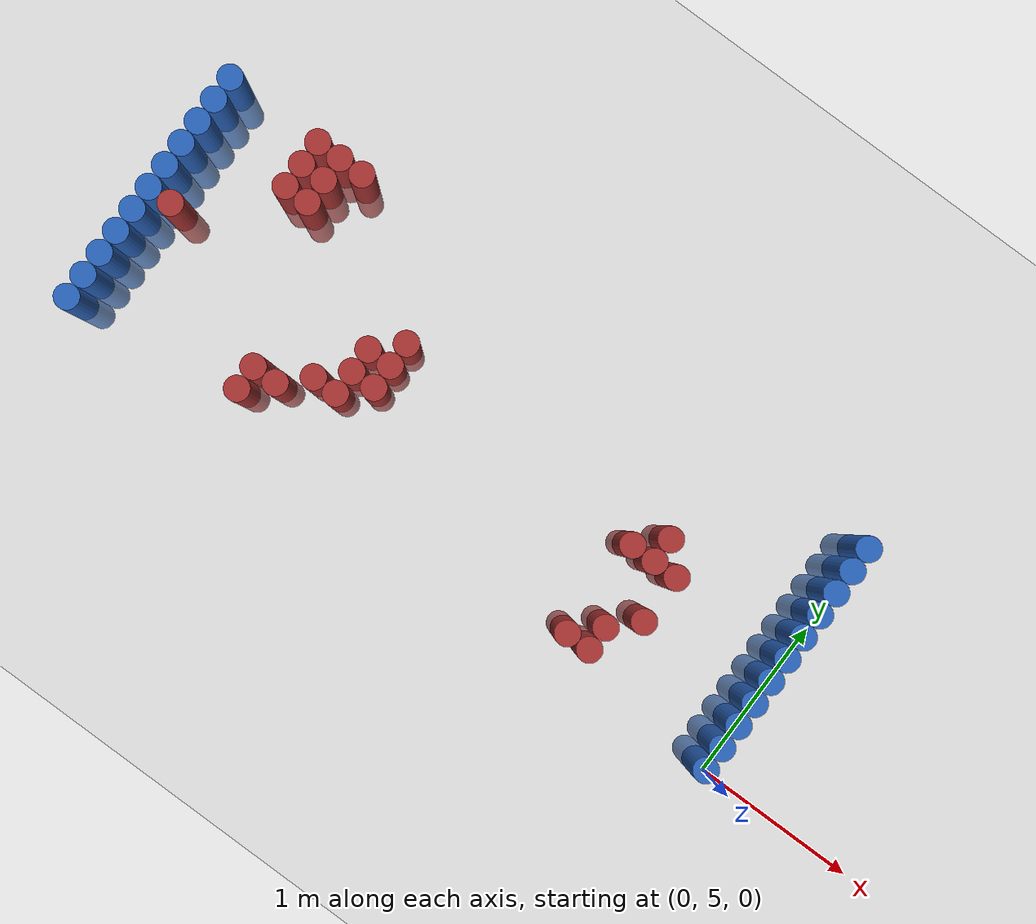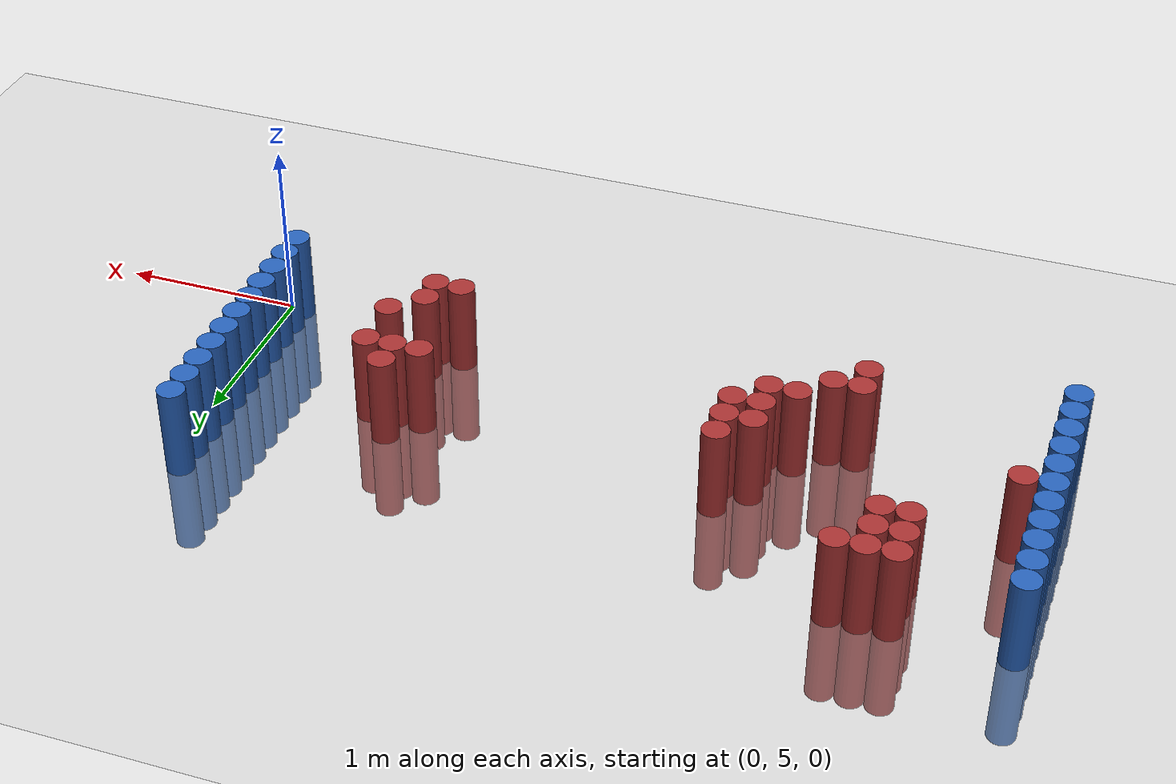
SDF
<sdf version="1.6">
 <world name="default">
  <model name="ground_plane">
   <static>1</static>
   <link name="link">
    <collision name="collision">
     <geometry><plane><normal>0 0 1</normal><size>100 100</size></plane></geometry>
     <surface><friction><ode><mu>100</mu><mu2>50</mu2></ode></friction></surface>
    </collision>
    <visual name="visual">
     <cast_shadows>0</cast_shadows>
     <geometry><plane><normal>0 0 1</normal><size>100 100</size></plane></geometry>
     <material>
      <script><uri>file://media/materials/scripts/gazebo.material</uri><name>Gazebo/Grey</name></script>
     </material>
    </visual>
   </link>
  </model>
  <model name="unit_cylinder_94">
   <static>1</static>
   <pose>-0.075000 5.025000 0.000000 0.000000 0.000000 0.000000</pose>
   <link name="link">
    <inertial>
     <mass>1</mass>
     <inertia><ixx>0.145833</ixx><ixy>0</ixy><ixz>0</ixz><iyy>0.145833</iyy><iyz>0</iyz><izz>0.125</izz></inertia>
    </inertial>
    <collision name="collision">
     <geometry><cylinder><radius>0.075000</radius><length>1</length></cylinder></geometry>
    </collision>
    <visual name="visual">
     <geometry><cylinder><radius>0.075000</radius><length>1</length></cylinder></geometry>
     <material>
      <ambient>0.152000 0.379000 0.720000 1</ambient>
      <diffuse>0.152000 0.379000 0.720000 1</diffuse>
     </material>
     <material>
      <script><name>Gazebo/Grey</name><uri>file://media/materials/scripts/gazebo.material</uri></script>
     </material>
    </visual>
   </link>
  </model>
  <model name="unit_cylinder_95">
   <static>1</static>
   <pose>-4.425000 5.025000 0.000000 0.000000 0.000000 0.000000</pose>
   <link name="link">
    <inertial>
     <mass>1</mass>
     <inertia><ixx>0.145833</ixx><ixy>0</ixy><ixz>0</ixz><iyy>0.145833</iyy><iyz>0</iyz><izz>0.125</izz></inertia>
    </inertial>
    <collision name="collision">
     <geometry><cylinder><radius>0.075000</radius><length>1</length></cylinder></geometry>
    </collision>
    <visual name="visual">
     <geometry><cylinder><radius>0.075000</radius><length>1</length></cylinder></geometry>
     <material>
      <ambient>0.152000 0.379000 0.720000 1</ambient>
      <diffuse>0.152000 0.379000 0.720000 1</diffuse>
     </material>
     <material>
      <script><name>Gazebo/Grey</name><uri>file://media/materials/scripts/gazebo.material</uri></script>
     </material>
    </visual>
   </link>
  </model>
  <model name="unit_cylinder_96">
   <static>1</static>
   <pose>-4.425000 5.175000 0.000000 0.000000 0.000000 0.000000</pose>
   <link name="link">
    <inertial>
     <mass>1</mass>
     <inertia><ixx>0.145833</ixx><ixy>0</ixy><ixz>0</ixz><iyy>0.145833</iyy><iyz>0</iyz><izz>0.125</izz></inertia>
    </inertial>
    <collision name="collision">
     <geometry><cylinder><radius>0.075000</radius><length>1</length></cylinder></geometry>
    </collision>
    <visual name="visual">
     <geometry><cylinder><radius>0.075000</radius><length>1</length></cylinder></geometry>
     <material>
      <ambient>0.152000 0.379000 0.720000 1</ambient>
      <diffuse>0.152000 0.379000 0.720000 1</diffuse>
     </material>
     <material>
      <script><name>Gazebo/Grey</name><uri>file://media/materials/scripts/gazebo.material</uri></script>
     </material>
    </visual>
   </link>
  </model>
  <model name="unit_cylinder_97">
   <static>1</static>
   <pose>-4.425000 5.325000 0.000000 0.000000 0.000000 0.000000</pose>
   <link name="link">
    <inertial>
     <mass>1</mass>
     <inertia><ixx>0.145833</ixx><ixy>0</ixy><ixz>0</ixz><iyy>0.145833</iyy><iyz>0</iyz><izz>0.125</izz></inertia>
    </inertial>
    <collision name="collision">
     <geometry><cylinder><radius>0.075000</radius><length>1</length></cylinder></geometry>
    </collision>
    <visual name="visual">
     <geometry><cylinder><radius>0.075000</radius><length>1</length></cylinder></geometry>
     <material>
      <ambient>0.152000 0.379000 0.720000 1</ambient>
      <diffuse>0.152000 0.379000 0.720000 1</diffuse>
     </material>
     <material>
      <script><name>Gazebo/Grey</name><uri>file://media/materials/scripts/gazebo.material</uri></script>
     </material>
    </visual>
   </link>
  </model>
  <model name="unit_cylinder_98">
   <static>1</static>
   <pose>-4.425000 5.475000 0.000000 0.000000 0.000000 0.000000</pose>
   <link name="link">
    <inertial>
     <mass>1</mass>
     <inertia><ixx>0.145833</ixx><ixy>0</ixy><ixz>0</ixz><iyy>0.145833</iyy><iyz>0</iyz><izz>0.125</izz></inertia>
    </inertial>
    <collision name="collision">
     <geometry><cylinder><radius>0.075000</radius><length>1</length></cylinder></geometry>
    </collision>
    <visual name="visual">
     <geometry><cylinder><radius>0.075000</radius><length>1</length></cylinder></geometry>
     <material>
      <ambient>0.152000 0.379000 0.720000 1</ambient>
      <diffuse>0.152000 0.379000 0.720000 1</diffuse>
     </material>
     <material>
      <script><name>Gazebo/Grey</name><uri>file://media/materials/scripts/gazebo.material</uri></script>
     </material>
    </visual>
   </link>
  </model>
  <model name="unit_cylinder_99">
   <static>1</static>
   <pose>-4.425000 5.625000 0.000000 0.000000 0.000000 0.000000</pose>
   <link name="link">
    <inertial>
     <mass>1</mass>
     <inertia><ixx>0.145833</ixx><ixy>0</ixy><ixz>0</ixz><iyy>0.145833</iyy><iyz>0</iyz><izz>0.125</izz></inertia>
    </inertial>
    <collision name="collision">
     <geometry><cylinder><radius>0.075000</radius><length>1</length></cylinder></geometry>
    </collision>
    <visual name="visual">
     <geometry><cylinder><radius>0.075000</radius><length>1</length></cylinder></geometry>
     <material>
      <ambient>0.152000 0.379000 0.720000 1</ambient>
      <diffuse>0.152000 0.379000 0.720000 1</diffuse>
     </material>
     <material>
      <script><name>Gazebo/Grey</name><uri>file://media/materials/scripts/gazebo.material</uri></script>
     </material>
    </visual>
   </link>
  </model>
  <model name="unit_cylinder_100">
   <static>1</static>
   <pose>-4.425000 5.775000 0.000000 0.000000 0.000000 0.000000</pose>
   <link name="link">
    <inertial>
     <mass>1</mass>
     <inertia><ixx>0.145833</ixx><ixy>0</ixy><ixz>0</ixz><iyy>0.145833</iyy><iyz>0</iyz><izz>0.125</izz></inertia>
    </inertial>
    <collision name="collision">
     <geometry><cylinder><radius>0.075000</radius><length>1</length></cylinder></geometry>
    </collision>
    <visual name="visual">
     <geometry><cylinder><radius>0.075000</radius><length>1</length></cylinder></geometry>
     <material>
      <ambient>0.152000 0.379000 0.720000 1</ambient>
      <diffuse>0.152000 0.379000 0.720000 1</diffuse>
     </material>
     <material>
      <script><name>Gazebo/Grey</name><uri>file://media/materials/scripts/gazebo.material</uri></script>
     </material>
    </visual>
   </link>
  </model>
  <model name="unit_cylinder_101">
   <static>1</static>
   <pose>-4.425000 5.925000 0.000000 0.000000 0.000000 0.000000</pose>
   <link name="link">
    <inertial>
     <mass>1</mass>
     <inertia><ixx>0.145833</ixx><ixy>0</ixy><ixz>0</ixz><iyy>0.145833</iyy><iyz>0</iyz><izz>0.125</izz></inertia>
    </inertial>
    <collision name="collision">
     <geometry><cylinder><radius>0.075000</radius><length>1</length></cylinder></geometry>
    </collision>
    <visual name="visual">
     <geometry><cylinder><radius>0.075000</radius><length>1</length></cylinder></geometry>
     <material>
      <ambient>0.152000 0.379000 0.720000 1</ambient>
      <diffuse>0.152000 0.379000 0.720000 1</diffuse>
     </material>
     <material>
      <script><name>Gazebo/Grey</name><uri>file://media/materials/scripts/gazebo.material</uri></script>
     </material>
    </visual>
   </link>
  </model>
  <model name="unit_cylinder_102">
   <static>1</static>
   <pose>-4.425000 6.075000 0.000000 0.000000 0.000000 0.000000</pose>
   <link name="link">
    <inertial>
     <mass>1</mass>
     <inertia><ixx>0.145833</ixx><ixy>0</ixy><ixz>0</ixz><iyy>0.145833</iyy><iyz>0</iyz><izz>0.125</izz></inertia>
    </inertial>
    <collision name="collision">
     <geometry><cylinder><radius>0.075000</radius><length>1</length></cylinder></geometry>
    </collision>
    <visual name="visual">
     <geometry><cylinder><radius>0.075000</radius><length>1</length></cylinder></geometry>
     <material>
      <ambient>0.152000 0.379000 0.720000 1</ambient>
      <diffuse>0.152000 0.379000 0.720000 1</diffuse>
     </material>
     <material>
      <script><name>Gazebo/Grey</name><uri>file://media/materials/scripts/gazebo.material</uri></script>
     </material>
    </visual>
   </link>
  </model>
  <model name="unit_cylinder_103">
   <static>1</static>
   <pose>-4.425000 6.225000 0.000000 0.000000 0.000000 0.000000</pose>
   <link name="link">
    <inertial>
     <mass>1</mass>
     <inertia><ixx>0.145833</ixx><ixy>0</ixy><ixz>0</ixz><iyy>0.145833</iyy><iyz>0</iyz><izz>0.125</izz></inertia>
    </inertial>
    <collision name="collision">
     <geometry><cylinder><radius>0.075000</radius><length>1</length></cylinder></geometry>
    </collision>
    <visual name="visual">
     <geometry><cylinder><radius>0.075000</radius><length>1</length></cylinder></geometry>
     <material>
      <ambient>0.152000 0.379000 0.720000 1</ambient>
      <diffuse>0.152000 0.379000 0.720000 1</diffuse>
     </material>
     <material>
      <script><name>Gazebo/Grey</name><uri>file://media/materials/scripts/gazebo.material</uri></script>
     </material>
    </visual>
   </link>
  </model>
  <model name="unit_cylinder_104">
   <static>1</static>
   <pose>-4.425000 6.375000 0.000000 0.000000 0.000000 0.000000</pose>
   <link name="link">
    <inertial>
     <mass>1</mass>
     <inertia><ixx>0.145833</ixx><ixy>0</ixy><ixz>0</ixz><iyy>0.145833</iyy><iyz>0</iyz><izz>0.125</izz></inertia>
    </inertial>
    <collision name="collision">
     <geometry><cylinder><radius>0.075000</radius><length>1</length></cylinder></geometry>
    </collision>
    <visual name="visual">
     <geometry><cylinder><radius>0.075000</radius><length>1</length></cylinder></geometry>
     <material>
      <ambient>0.152000 0.379000 0.720000 1</ambient>
      <diffuse>0.152000 0.379000 0.720000 1</diffuse>
     </material>
     <material>
      <script><name>Gazebo/Grey</name><uri>file://media/materials/scripts/gazebo.material</uri></script>
     </material>
    </visual>
   </link>
  </model>
  <model name="unit_cylinder_105">
   <static>1</static>
   <pose>-4.425000 6.525000 0.000000 0.000000 0.000000 0.000000</pose>
   <link name="link">
    <inertial>
     <mass>1</mass>
     <inertia><ixx>0.145833</ixx><ixy>0</ixy><ixz>0</ixz><iyy>0.145833</iyy><iyz>0</iyz><izz>0.125</izz></inertia>
    </inertial>
    <collision name="collision">
     <geometry><cylinder><radius>0.075000</radius><length>1</length></cylinder></geometry>
    </collision>
    <visual name="visual">
     <geometry><cylinder><radius>0.075000</radius><length>1</length></cylinder></geometry>
     <material>
      <ambient>0.152000 0.379000 0.720000 1</ambient>
      <diffuse>0.152000 0.379000 0.720000 1</diffuse>
     </material>
     <material>
      <script><name>Gazebo/Grey</name><uri>file://media/materials/scripts/gazebo.material</uri></script>
     </material>
    </visual>
   </link>
  </model>
  <model name="unit_cylinder_126">
   <static>1</static>
   <pose>-4.275000 5.775000 0.000000 0.000000 0.000000 0.000000</pose>
   <link name="link">
    <inertial>
     <mass>1</mass>
     <inertia><ixx>0.145833</ixx><ixy>0</ixy><ixz>0</ixz><iyy>0.145833</iyy><iyz>0</iyz><izz>0.125</izz></inertia>
    </inertial>
    <collision name="collision">
     <geometry><cylinder><radius>0.075000</radius><length>1</length></cylinder></geometry>
    </collision>
    <visual name="visual">
     <geometry><cylinder><radius>0.075000</radius><length>1</length></cylinder></geometry>
     <material>
      <ambient>0.648000 0.192000 0.192000 1</ambient>
      <diffuse>0.648000 0.192000 0.192000 1</diffuse>
     </material>
     <material>
      <script><name>Gazebo/Grey</name><uri>file://media/materials/scripts/gazebo.material</uri></script>
     </material>
    </visual>
   </link>
  </model>
  <model name="unit_cylinder_140">
   <static>1</static>
   <pose>-3.825000 6.225000 0.000000 0.000000 0.000000 0.000000</pose>
   <link name="link">
    <inertial>
     <mass>1</mass>
     <inertia><ixx>0.145833</ixx><ixy>0</ixy><ixz>0</ixz><iyy>0.145833</iyy><iyz>0</iyz><izz>0.125</izz></inertia>
    </inertial>
    <collision name="collision">
     <geometry><cylinder><radius>0.075000</radius><length>1</length></cylinder></geometry>
    </collision>
    <visual name="visual">
     <geometry><cylinder><radius>0.075000</radius><length>1</length></cylinder></geometry>
     <material>
      <ambient>0.648000 0.192000 0.192000 1</ambient>
      <diffuse>0.648000 0.192000 0.192000 1</diffuse>
     </material>
     <material>
      <script><name>Gazebo/Grey</name><uri>file://media/materials/scripts/gazebo.material</uri></script>
     </material>
    </visual>
   </link>
  </model>
  <model name="unit_cylinder_141">
   <static>1</static>
   <pose>-3.825000 6.375000 0.000000 0.000000 0.000000 0.000000</pose>
   <link name="link">
    <inertial>
     <mass>1</mass>
     <inertia><ixx>0.145833</ixx><ixy>0</ixy><ixz>0</ixz><iyy>0.145833</iyy><iyz>0</iyz><izz>0.125</izz></inertia>
    </inertial>
    <collision name="collision">
     <geometry><cylinder><radius>0.075000</radius><length>1</length></cylinder></geometry>
    </collision>
    <visual name="visual">
     <geometry><cylinder><radius>0.075000</radius><length>1</length></cylinder></geometry>
     <material>
      <ambient>0.648000 0.192000 0.192000 1</ambient>
      <diffuse>0.648000 0.192000 0.192000 1</diffuse>
     </material>
     <material>
      <script><name>Gazebo/Grey</name><uri>file://media/materials/scripts/gazebo.material</uri></script>
     </material>
    </visual>
   </link>
  </model>
  <model name="unit_cylinder_142">
   <static>1</static>
   <pose>-3.825000 6.525000 0.000000 0.000000 0.000000 0.000000</pose>
   <link name="link">
    <inertial>
     <mass>1</mass>
     <inertia><ixx>0.145833</ixx><ixy>0</ixy><ixz>0</ixz><iyy>0.145833</iyy><iyz>0</iyz><izz>0.125</izz></inertia>
    </inertial>
    <collision name="collision">
     <geometry><cylinder><radius>0.075000</radius><length>1</length></cylinder></geometry>
    </collision>
    <visual name="visual">
     <geometry><cylinder><radius>0.075000</radius><length>1</length></cylinder></geometry>
     <material>
      <ambient>0.648000 0.192000 0.192000 1</ambient>
      <diffuse>0.648000 0.192000 0.192000 1</diffuse>
     </material>
     <material>
      <script><name>Gazebo/Grey</name><uri>file://media/materials/scripts/gazebo.material</uri></script>
     </material>
    </visual>
   </link>
  </model>
  <model name="unit_cylinder_143">
   <static>1</static>
   <pose>-3.675000 6.225000 0.000000 0.000000 0.000000 0.000000</pose>
   <link name="link">
    <inertial>
     <mass>1</mass>
     <inertia><ixx>0.145833</ixx><ixy>0</ixy><ixz>0</ixz><iyy>0.145833</iyy><iyz>0</iyz><izz>0.125</izz></inertia>
    </inertial>
    <collision name="collision">
     <geometry><cylinder><radius>0.075000</radius><length>1</length></cylinder></geometry>
    </collision>
    <visual name="visual">
     <geometry><cylinder><radius>0.075000</radius><length>1</length></cylinder></geometry>
     <material>
      <ambient>0.648000 0.192000 0.192000 1</ambient>
      <diffuse>0.648000 0.192000 0.192000 1</diffuse>
     </material>
     <material>
      <script><name>Gazebo/Grey</name><uri>file://media/materials/scripts/gazebo.material</uri></script>
     </material>
    </visual>
   </link>
  </model>
  <model name="unit_cylinder_144">
   <static>1</static>
   <pose>-3.675000 6.375000 0.000000 0.000000 0.000000 0.000000</pose>
   <link name="link">
    <inertial>
     <mass>1</mass>
     <inertia><ixx>0.145833</ixx><ixy>0</ixy><ixz>0</ixz><iyy>0.145833</iyy><iyz>0</iyz><izz>0.125</izz></inertia>
    </inertial>
    <collision name="collision">
     <geometry><cylinder><radius>0.075000</radius><length>1</length></cylinder></geometry>
    </collision>
    <visual name="visual">
     <geometry><cylinder><radius>0.075000</radius><length>1</length></cylinder></geometry>
     <material>
      <ambient>0.648000 0.192000 0.192000 1</ambient>
      <diffuse>0.648000 0.192000 0.192000 1</diffuse>
     </material>
     <material>
      <script><name>Gazebo/Grey</name><uri>file://media/materials/scripts/gazebo.material</uri></script>
     </material>
    </visual>
   </link>
  </model>
  <model name="unit_cylinder_145">
   <static>1</static>
   <pose>-3.675000 6.525000 0.000000 0.000000 0.000000 0.000000</pose>
   <link name="link">
    <inertial>
     <mass>1</mass>
     <inertia><ixx>0.145833</ixx><ixy>0</ixy><ixz>0</ixz><iyy>0.145833</iyy><iyz>0</iyz><izz>0.125</izz></inertia>
    </inertial>
    <collision name="collision">
     <geometry><cylinder><radius>0.075000</radius><length>1</length></cylinder></geometry>
    </collision>
    <visual name="visual">
     <geometry><cylinder><radius>0.075000</radius><length>1</length></cylinder></geometry>
     <material>
      <ambient>0.648000 0.192000 0.192000 1</ambient>
      <diffuse>0.648000 0.192000 0.192000 1</diffuse>
     </material>
     <material>
      <script><name>Gazebo/Grey</name><uri>file://media/materials/scripts/gazebo.material</uri></script>
     </material>
    </visual>
   </link>
  </model>
  <model name="unit_cylinder_147">
   <static>1</static>
   <pose>-3.525000 6.525000 0.000000 0.000000 0.000000 0.000000</pose>
   <link name="link">
    <inertial>
     <mass>1</mass>
     <inertia><ixx>0.145833</ixx><ixy>0</ixy><ixz>0</ixz><iyy>0.145833</iyy><iyz>0</iyz><izz>0.125</izz></inertia>
    </inertial>
    <collision name="collision">
     <geometry><cylinder><radius>0.075000</radius><length>1</length></cylinder></geometry>
    </collision>
    <visual name="visual">
     <geometry><cylinder><radius>0.075000</radius><length>1</length></cylinder></geometry>
     <material>
      <ambient>0.648000 0.192000 0.192000 1</ambient>
      <diffuse>0.648000 0.192000 0.192000 1</diffuse>
     </material>
     <material>
      <script><name>Gazebo/Grey</name><uri>file://media/materials/scripts/gazebo.material</uri></script>
     </material>
    </visual>
   </link>
  </model>
  <model name="unit_cylinder_149">
   <static>1</static>
   <pose>-3.375000 5.175000 0.000000 0.000000 0.000000 0.000000</pose>
   <link name="link">
    <inertial>
     <mass>1</mass>
     <inertia><ixx>0.145833</ixx><ixy>0</ixy><ixz>0</ixz><iyy>0.145833</iyy><iyz>0</iyz><izz>0.125</izz></inertia>
    </inertial>
    <collision name="collision">
     <geometry><cylinder><radius>0.075000</radius><length>1</length></cylinder></geometry>
    </collision>
    <visual name="visual">
     <geometry><cylinder><radius>0.075000</radius><length>1</length></cylinder></geometry>
     <material>
      <ambient>0.648000 0.192000 0.192000 1</ambient>
      <diffuse>0.648000 0.192000 0.192000 1</diffuse>
     </material>
     <material>
      <script><name>Gazebo/Grey</name><uri>file://media/materials/scripts/gazebo.material</uri></script>
     </material>
    </visual>
   </link>
  </model>
  <model name="unit_cylinder_150">
   <static>1</static>
   <pose>-3.375000 5.325000 0.000000 0.000000 0.000000 0.000000</pose>
   <link name="link">
    <inertial>
     <mass>1</mass>
     <inertia><ixx>0.145833</ixx><ixy>0</ixy><ixz>0</ixz><iyy>0.145833</iyy><iyz>0</iyz><izz>0.125</izz></inertia>
    </inertial>
    <collision name="collision">
     <geometry><cylinder><radius>0.075000</radius><length>1</length></cylinder></geometry>
    </collision>
    <visual name="visual">
     <geometry><cylinder><radius>0.075000</radius><length>1</length></cylinder></geometry>
     <material>
      <ambient>0.648000 0.192000 0.192000 1</ambient>
      <diffuse>0.648000 0.192000 0.192000 1</diffuse>
     </material>
     <material>
      <script><name>Gazebo/Grey</name><uri>file://media/materials/scripts/gazebo.material</uri></script>
     </material>
    </visual>
   </link>
  </model>
  <model name="unit_cylinder_157">
   <static>1</static>
   <pose>-3.225000 5.325000 0.000000 0.000000 0.000000 0.000000</pose>
   <link name="link">
    <inertial>
     <mass>1</mass>
     <inertia><ixx>0.145833</ixx><ixy>0</ixy><ixz>0</ixz><iyy>0.145833</iyy><iyz>0</iyz><izz>0.125</izz></inertia>
    </inertial>
    <collision name="collision">
     <geometry><cylinder><radius>0.075000</radius><length>1</length></cylinder></geometry>
    </collision>
    <visual name="visual">
     <geometry><cylinder><radius>0.075000</radius><length>1</length></cylinder></geometry>
     <material>
      <ambient>0.648000 0.192000 0.192000 1</ambient>
      <diffuse>0.648000 0.192000 0.192000 1</diffuse>
     </material>
     <material>
      <script><name>Gazebo/Grey</name><uri>file://media/materials/scripts/gazebo.material</uri></script>
     </material>
    </visual>
   </link>
  </model>
  <model name="unit_cylinder_165">
   <static>1</static>
   <pose>-3.075000 5.475000 0.000000 0.000000 0.000000 0.000000</pose>
   <link name="link">
    <inertial>
     <mass>1</mass>
     <inertia><ixx>0.145833</ixx><ixy>0</ixy><ixz>0</ixz><iyy>0.145833</iyy><iyz>0</iyz><izz>0.125</izz></inertia>
    </inertial>
    <collision name="collision">
     <geometry><cylinder><radius>0.075000</radius><length>1</length></cylinder></geometry>
    </collision>
    <visual name="visual">
     <geometry><cylinder><radius>0.075000</radius><length>1</length></cylinder></geometry>
     <material>
      <ambient>0.648000 0.192000 0.192000 1</ambient>
      <diffuse>0.648000 0.192000 0.192000 1</diffuse>
     </material>
     <material>
      <script><name>Gazebo/Grey</name><uri>file://media/materials/scripts/gazebo.material</uri></script>
     </material>
    </visual>
   </link>
  </model>
  <model name="unit_cylinder_168">
   <static>1</static>
   <pose>-2.925000 5.475000 0.000000 0.000000 0.000000 0.000000</pose>
   <link name="link">
    <inertial>
     <mass>1</mass>
     <inertia><ixx>0.145833</ixx><ixy>0</ixy><ixz>0</ixz><iyy>0.145833</iyy><iyz>0</iyz><izz>0.125</izz></inertia>
    </inertial>
    <collision name="collision">
     <geometry><cylinder><radius>0.075000</radius><length>1</length></cylinder></geometry>
    </collision>
    <visual name="visual">
     <geometry><cylinder><radius>0.075000</radius><length>1</length></cylinder></geometry>
     <material>
      <ambient>0.648000 0.192000 0.192000 1</ambient>
      <diffuse>0.648000 0.192000 0.192000 1</diffuse>
     </material>
     <material>
      <script><name>Gazebo/Grey</name><uri>file://media/materials/scripts/gazebo.material</uri></script>
     </material>
    </visual>
   </link>
  </model>
  <model name="unit_cylinder_169">
   <static>1</static>
   <pose>-2.925000 5.625000 0.000000 0.000000 0.000000 0.000000</pose>
   <link name="link">
    <inertial>
     <mass>1</mass>
     <inertia><ixx>0.145833</ixx><ixy>0</ixy><ixz>0</ixz><iyy>0.145833</iyy><iyz>0</iyz><izz>0.125</izz></inertia>
    </inertial>
    <collision name="collision">
     <geometry><cylinder><radius>0.075000</radius><length>1</length></cylinder></geometry>
    </collision>
    <visual name="visual">
     <geometry><cylinder><radius>0.075000</radius><length>1</length></cylinder></geometry>
     <material>
      <ambient>0.648000 0.192000 0.192000 1</ambient>
      <diffuse>0.648000 0.192000 0.192000 1</diffuse>
     </material>
     <material>
      <script><name>Gazebo/Grey</name><uri>file://media/materials/scripts/gazebo.material</uri></script>
     </material>
    </visual>
   </link>
  </model>
  <model name="unit_cylinder_170">
   <static>1</static>
   <pose>-2.925000 5.775000 0.000000 0.000000 0.000000 0.000000</pose>
   <link name="link">
    <inertial>
     <mass>1</mass>
     <inertia><ixx>0.145833</ixx><ixy>0</ixy><ixz>0</ixz><iyy>0.145833</iyy><iyz>0</iyz><izz>0.125</izz></inertia>
    </inertial>
    <collision name="collision">
     <geometry><cylinder><radius>0.075000</radius><length>1</length></cylinder></geometry>
    </collision>
    <visual name="visual">
     <geometry><cylinder><radius>0.075000</radius><length>1</length></cylinder></geometry>
     <material>
      <ambient>0.648000 0.192000 0.192000 1</ambient>
      <diffuse>0.648000 0.192000 0.192000 1</diffuse>
     </material>
     <material>
      <script><name>Gazebo/Grey</name><uri>file://media/materials/scripts/gazebo.material</uri></script>
     </material>
    </visual>
   </link>
  </model>
  <model name="unit_cylinder_171">
   <static>1</static>
   <pose>-2.775000 5.625000 0.000000 0.000000 0.000000 0.000000</pose>
   <link name="link">
    <inertial>
     <mass>1</mass>
     <inertia><ixx>0.145833</ixx><ixy>0</ixy><ixz>0</ixz><iyy>0.145833</iyy><iyz>0</iyz><izz>0.125</izz></inertia>
    </inertial>
    <collision name="collision">
     <geometry><cylinder><radius>0.075000</radius><length>1</length></cylinder></geometry>
    </collision>
    <visual name="visual">
     <geometry><cylinder><radius>0.075000</radius><length>1</length></cylinder></geometry>
     <material>
      <ambient>0.648000 0.192000 0.192000 1</ambient>
      <diffuse>0.648000 0.192000 0.192000 1</diffuse>
     </material>
     <material>
      <script><name>Gazebo/Grey</name><uri>file://media/materials/scripts/gazebo.material</uri></script>
     </material>
    </visual>
   </link>
  </model>
  <model name="unit_cylinder_172">
   <static>1</static>
   <pose>-2.775000 5.775000 0.000000 0.000000 0.000000 0.000000</pose>
   <link name="link">
    <inertial>
     <mass>1</mass>
     <inertia><ixx>0.145833</ixx><ixy>0</ixy><ixz>0</ixz><iyy>0.145833</iyy><iyz>0</iyz><izz>0.125</izz></inertia>
    </inertial>
    <collision name="collision">
     <geometry><cylinder><radius>0.075000</radius><length>1</length></cylinder></geometry>
    </collision>
    <visual name="visual">
     <geometry><cylinder><radius>0.075000</radius><length>1</length></cylinder></geometry>
     <material>
      <ambient>0.648000 0.192000 0.192000 1</ambient>
      <diffuse>0.648000 0.192000 0.192000 1</diffuse>
     </material>
     <material>
      <script><name>Gazebo/Grey</name><uri>file://media/materials/scripts/gazebo.material</uri></script>
     </material>
    </visual>
   </link>
  </model>
  <model name="unit_cylinder_173">
   <static>1</static>
   <pose>-2.775000 5.925000 0.000000 0.000000 0.000000 0.000000</pose>
   <link name="link">
    <inertial>
     <mass>1</mass>
     <inertia><ixx>0.145833</ixx><ixy>0</ixy><ixz>0</ixz><iyy>0.145833</iyy><iyz>0</iyz><izz>0.125</izz></inertia>
    </inertial>
    <collision name="collision">
     <geometry><cylinder><radius>0.075000</radius><length>1</length></cylinder></geometry>
    </collision>
    <visual name="visual">
     <geometry><cylinder><radius>0.075000</radius><length>1</length></cylinder></geometry>
     <material>
      <ambient>0.648000 0.192000 0.192000 1</ambient>
      <diffuse>0.648000 0.192000 0.192000 1</diffuse>
     </material>
     <material>
      <script><name>Gazebo/Grey</name><uri>file://media/materials/scripts/gazebo.material</uri></script>
     </material>
    </visual>
   </link>
  </model>
  <model name="unit_cylinder_180">
   <static>1</static>
   <pose>-1.125000 5.175000 0.000000 0.000000 0.000000 0.000000</pose>
   <link name="link">
    <inertial>
     <mass>1</mass>
     <inertia><ixx>0.145833</ixx><ixy>0</ixy><ixz>0</ixz><iyy>0.145833</iyy><iyz>0</iyz><izz>0.125</izz></inertia>
    </inertial>
    <collision name="collision">
     <geometry><cylinder><radius>0.075000</radius><length>1</length></cylinder></geometry>
    </collision>
    <visual name="visual">
     <geometry><cylinder><radius>0.075000</radius><length>1</length></cylinder></geometry>
     <material>
      <ambient>0.648000 0.192000 0.192000 1</ambient>
      <diffuse>0.648000 0.192000 0.192000 1</diffuse>
     </material>
     <material>
      <script><name>Gazebo/Grey</name><uri>file://media/materials/scripts/gazebo.material</uri></script>
     </material>
    </visual>
   </link>
  </model>
  <model name="unit_cylinder_181">
   <static>1</static>
   <pose>-1.125000 5.775000 0.000000 0.000000 0.000000 0.000000</pose>
   <link name="link">
    <inertial>
     <mass>1</mass>
     <inertia><ixx>0.145833</ixx><ixy>0</ixy><ixz>0</ixz><iyy>0.145833</iyy><iyz>0</iyz><izz>0.125</izz></inertia>
    </inertial>
    <collision name="collision">
     <geometry><cylinder><radius>0.075000</radius><length>1</length></cylinder></geometry>
    </collision>
    <visual name="visual">
     <geometry><cylinder><radius>0.075000</radius><length>1</length></cylinder></geometry>
     <material>
      <ambient>0.648000 0.192000 0.192000 1</ambient>
      <diffuse>0.648000 0.192000 0.192000 1</diffuse>
     </material>
     <material>
      <script><name>Gazebo/Grey</name><uri>file://media/materials/scripts/gazebo.material</uri></script>
     </material>
    </visual>
   </link>
  </model>
  <model name="unit_cylinder_182">
   <static>1</static>
   <pose>-0.975000 5.175000 0.000000 0.000000 0.000000 0.000000</pose>
   <link name="link">
    <inertial>
     <mass>1</mass>
     <inertia><ixx>0.145833</ixx><ixy>0</ixy><ixz>0</ixz><iyy>0.145833</iyy><iyz>0</iyz><izz>0.125</izz></inertia>
    </inertial>
    <collision name="collision">
     <geometry><cylinder><radius>0.075000</radius><length>1</length></cylinder></geometry>
    </collision>
    <visual name="visual">
     <geometry><cylinder><radius>0.075000</radius><length>1</length></cylinder></geometry>
     <material>
      <ambient>0.648000 0.192000 0.192000 1</ambient>
      <diffuse>0.648000 0.192000 0.192000 1</diffuse>
     </material>
     <material>
      <script><name>Gazebo/Grey</name><uri>file://media/materials/scripts/gazebo.material</uri></script>
     </material>
    </visual>
   </link>
  </model>
  <model name="unit_cylinder_183">
   <static>1</static>
   <pose>-0.975000 5.325000 0.000000 0.000000 0.000000 0.000000</pose>
   <link name="link">
    <inertial>
     <mass>1</mass>
     <inertia><ixx>0.145833</ixx><ixy>0</ixy><ixz>0</ixz><iyy>0.145833</iyy><iyz>0</iyz><izz>0.125</izz></inertia>
    </inertial>
    <collision name="collision">
     <geometry><cylinder><radius>0.075000</radius><length>1</length></cylinder></geometry>
    </collision>
    <visual name="visual">
     <geometry><cylinder><radius>0.075000</radius><length>1</length></cylinder></geometry>
     <material>
      <ambient>0.648000 0.192000 0.192000 1</ambient>
      <diffuse>0.648000 0.192000 0.192000 1</diffuse>
     </material>
     <material>
      <script><name>Gazebo/Grey</name><uri>file://media/materials/scripts/gazebo.material</uri></script>
     </material>
    </visual>
   </link>
  </model>
  <model name="unit_cylinder_184">
   <static>1</static>
   <pose>-0.975000 5.775000 0.000000 0.000000 0.000000 0.000000</pose>
   <link name="link">
    <inertial>
     <mass>1</mass>
     <inertia><ixx>0.145833</ixx><ixy>0</ixy><ixz>0</ixz><iyy>0.145833</iyy><iyz>0</iyz><izz>0.125</izz></inertia>
    </inertial>
    <collision name="collision">
     <geometry><cylinder><radius>0.075000</radius><length>1</length></cylinder></geometry>
    </collision>
    <visual name="visual">
     <geometry><cylinder><radius>0.075000</radius><length>1</length></cylinder></geometry>
     <material>
      <ambient>0.648000 0.192000 0.192000 1</ambient>
      <diffuse>0.648000 0.192000 0.192000 1</diffuse>
     </material>
     <material>
      <script><name>Gazebo/Grey</name><uri>file://media/materials/scripts/gazebo.material</uri></script>
     </material>
    </visual>
   </link>
  </model>
  <model name="unit_cylinder_185">
   <static>1</static>
   <pose>-0.975000 5.925000 0.000000 0.000000 0.000000 0.000000</pose>
   <link name="link">
    <inertial>
     <mass>1</mass>
     <inertia><ixx>0.145833</ixx><ixy>0</ixy><ixz>0</ixz><iyy>0.145833</iyy><iyz>0</iyz><izz>0.125</izz></inertia>
    </inertial>
    <collision name="collision">
     <geometry><cylinder><radius>0.075000</radius><length>1</length></cylinder></geometry>
    </collision>
    <visual name="visual">
     <geometry><cylinder><radius>0.075000</radius><length>1</length></cylinder></geometry>
     <material>
      <ambient>0.648000 0.192000 0.192000 1</ambient>
      <diffuse>0.648000 0.192000 0.192000 1</diffuse>
     </material>
     <material>
      <script><name>Gazebo/Grey</name><uri>file://media/materials/scripts/gazebo.material</uri></script>
     </material>
    </visual>
   </link>
  </model>
  <model name="unit_cylinder_186">
   <static>1</static>
   <pose>-0.825000 5.475000 0.000000 0.000000 0.000000 0.000000</pose>
   <link name="link">
    <inertial>
     <mass>1</mass>
     <inertia><ixx>0.145833</ixx><ixy>0</ixy><ixz>0</ixz><iyy>0.145833</iyy><iyz>0</iyz><izz>0.125</izz></inertia>
    </inertial>
    <collision name="collision">
     <geometry><cylinder><radius>0.075000</radius><length>1</length></cylinder></geometry>
    </collision>
    <visual name="visual">
     <geometry><cylinder><radius>0.075000</radius><length>1</length></cylinder></geometry>
     <material>
      <ambient>0.648000 0.192000 0.192000 1</ambient>
      <diffuse>0.648000 0.192000 0.192000 1</diffuse>
     </material>
     <material>
      <script><name>Gazebo/Grey</name><uri>file://media/materials/scripts/gazebo.material</uri></script>
     </material>
    </visual>
   </link>
  </model>
  <model name="unit_cylinder_187">
   <static>1</static>
   <pose>-0.825000 5.775000 0.000000 0.000000 0.000000 0.000000</pose>
   <link name="link">
    <inertial>
     <mass>1</mass>
     <inertia><ixx>0.145833</ixx><ixy>0</ixy><ixz>0</ixz><iyy>0.145833</iyy><iyz>0</iyz><izz>0.125</izz></inertia>
    </inertial>
    <collision name="collision">
     <geometry><cylinder><radius>0.075000</radius><length>1</length></cylinder></geometry>
    </collision>
    <visual name="visual">
     <geometry><cylinder><radius>0.075000</radius><length>1</length></cylinder></geometry>
     <material>
      <ambient>0.648000 0.192000 0.192000 1</ambient>
      <diffuse>0.648000 0.192000 0.192000 1</diffuse>
     </material>
     <material>
      <script><name>Gazebo/Grey</name><uri>file://media/materials/scripts/gazebo.material</uri></script>
     </material>
    </visual>
   </link>
  </model>
  <model name="unit_cylinder_207">
   <static>1</static>
   <pose>-0.075000 5.175000 0.000000 0.000000 0.000000 0.000000</pose>
   <link name="link">
    <inertial>
     <mass>1</mass>
     <inertia><ixx>0.145833</ixx><ixy>0</ixy><ixz>0</ixz><iyy>0.145833</iyy><iyz>0</iyz><izz>0.125</izz></inertia>
    </inertial>
    <collision name="collision">
     <geometry><cylinder><radius>0.075000</radius><length>1</length></cylinder></geometry>
    </collision>
    <visual name="visual">
     <geometry><cylinder><radius>0.075000</radius><length>1</length></cylinder></geometry>
     <material>
      <ambient>0.152000 0.379000 0.720000 1</ambient>
      <diffuse>0.152000 0.379000 0.720000 1</diffuse>
     </material>
     <material>
      <script><name>Gazebo/Grey</name><uri>file://media/materials/scripts/gazebo.material</uri></script>
     </material>
    </visual>
   </link>
  </model>
  <model name="unit_cylinder_208">
   <static>1</static>
   <pose>-0.075000 5.325000 0.000000 0.000000 0.000000 0.000000</pose>
   <link name="link">
    <inertial>
     <mass>1</mass>
     <inertia><ixx>0.145833</ixx><ixy>0</ixy><ixz>0</ixz><iyy>0.145833</iyy><iyz>0</iyz><izz>0.125</izz></inertia>
    </inertial>
    <collision name="collision">
     <geometry><cylinder><radius>0.075000</radius><length>1</length></cylinder></geometry>
    </collision>
    <visual name="visual">
     <geometry><cylinder><radius>0.075000</radius><length>1</length></cylinder></geometry>
     <material>
      <ambient>0.152000 0.379000 0.720000 1</ambient>
      <diffuse>0.152000 0.379000 0.720000 1</diffuse>
     </material>
     <material>
      <script><name>Gazebo/Grey</name><uri>file://media/materials/scripts/gazebo.material</uri></script>
     </material>
    </visual>
   </link>
  </model>
  <model name="unit_cylinder_209">
   <static>1</static>
   <pose>-0.075000 5.475000 0.000000 0.000000 0.000000 0.000000</pose>
   <link name="link">
    <inertial>
     <mass>1</mass>
     <inertia><ixx>0.145833</ixx><ixy>0</ixy><ixz>0</ixz><iyy>0.145833</iyy><iyz>0</iyz><izz>0.125</izz></inertia>
    </inertial>
    <collision name="collision">
     <geometry><cylinder><radius>0.075000</radius><length>1</length></cylinder></geometry>
    </collision>
    <visual name="visual">
     <geometry><cylinder><radius>0.075000</radius><length>1</length></cylinder></geometry>
     <material>
      <ambient>0.152000 0.379000 0.720000 1</ambient>
      <diffuse>0.152000 0.379000 0.720000 1</diffuse>
     </material>
     <material>
      <script><name>Gazebo/Grey</name><uri>file://media/materials/scripts/gazebo.material</uri></script>
     </material>
    </visual>
   </link>
  </model>
  <model name="unit_cylinder_210">
   <static>1</static>
   <pose>-0.075000 5.625000 0.000000 0.000000 0.000000 0.000000</pose>
   <link name="link">
    <inertial>
     <mass>1</mass>
     <inertia><ixx>0.145833</ixx><ixy>0</ixy><ixz>0</ixz><iyy>0.145833</iyy><iyz>0</iyz><izz>0.125</izz></inertia>
    </inertial>
    <collision name="collision">
     <geometry><cylinder><radius>0.075000</radius><length>1</length></cylinder></geometry>
    </collision>
    <visual name="visual">
     <geometry><cylinder><radius>0.075000</radius><length>1</length></cylinder></geometry>
     <material>
      <ambient>0.152000 0.379000 0.720000 1</ambient>
      <diffuse>0.152000 0.379000 0.720000 1</diffuse>
     </material>
     <material>
      <script><name>Gazebo/Grey</name><uri>file://media/materials/scripts/gazebo.material</uri></script>
     </material>
    </visual>
   </link>
  </model>
  <model name="unit_cylinder_211">
   <static>1</static>
   <pose>-0.075000 5.775000 0.000000 0.000000 0.000000 0.000000</pose>
   <link name="link">
    <inertial>
     <mass>1</mass>
     <inertia><ixx>0.145833</ixx><ixy>0</ixy><ixz>0</ixz><iyy>0.145833</iyy><iyz>0</iyz><izz>0.125</izz></inertia>
    </inertial>
    <collision name="collision">
     <geometry><cylinder><radius>0.075000</radius><length>1</length></cylinder></geometry>
    </collision>
    <visual name="visual">
     <geometry><cylinder><radius>0.075000</radius><length>1</length></cylinder></geometry>
     <material>
      <ambient>0.152000 0.379000 0.720000 1</ambient>
      <diffuse>0.152000 0.379000 0.720000 1</diffuse>
     </material>
     <material>
      <script><name>Gazebo/Grey</name><uri>file://media/materials/scripts/gazebo.material</uri></script>
     </material>
    </visual>
   </link>
  </model>
  <model name="unit_cylinder_212">
   <static>1</static>
   <pose>-0.075000 5.925000 0.000000 0.000000 0.000000 0.000000</pose>
   <link name="link">
    <inertial>
     <mass>1</mass>
     <inertia><ixx>0.145833</ixx><ixy>0</ixy><ixz>0</ixz><iyy>0.145833</iyy><iyz>0</iyz><izz>0.125</izz></inertia>
    </inertial>
    <collision name="collision">
     <geometry><cylinder><radius>0.075000</radius><length>1</length></cylinder></geometry>
    </collision>
    <visual name="visual">
     <geometry><cylinder><radius>0.075000</radius><length>1</length></cylinder></geometry>
     <material>
      <ambient>0.152000 0.379000 0.720000 1</ambient>
      <diffuse>0.152000 0.379000 0.720000 1</diffuse>
     </material>
     <material>
      <script><name>Gazebo/Grey</name><uri>file://media/materials/scripts/gazebo.material</uri></script>
     </material>
    </visual>
   </link>
  </model>
  <model name="unit_cylinder_213">
   <static>1</static>
   <pose>-0.075000 6.075000 0.000000 0.000000 0.000000 0.000000</pose>
   <link name="link">
    <inertial>
     <mass>1</mass>
     <inertia><ixx>0.145833</ixx><ixy>0</ixy><ixz>0</ixz><iyy>0.145833</iyy><iyz>0</iyz><izz>0.125</izz></inertia>
    </inertial>
    <collision name="collision">
     <geometry><cylinder><radius>0.075000</radius><length>1</length></cylinder></geometry>
    </collision>
    <visual name="visual">
     <geometry><cylinder><radius>0.075000</radius><length>1</length></cylinder></geometry>
     <material>
      <ambient>0.152000 0.379000 0.720000 1</ambient>
      <diffuse>0.152000 0.379000 0.720000 1</diffuse>
     </material>
     <material>
      <script><name>Gazebo/Grey</name><uri>file://media/materials/scripts/gazebo.material</uri></script>
     </material>
    </visual>
   </link>
  </model>
  <model name="unit_cylinder_214">
   <static>1</static>
   <pose>-0.075000 6.225000 0.000000 0.000000 0.000000 0.000000</pose>
   <link name="link">
    <inertial>
     <mass>1</mass>
     <inertia><ixx>0.145833</ixx><ixy>0</ixy><ixz>0</ixz><iyy>0.145833</iyy><iyz>0</iyz><izz>0.125</izz></inertia>
    </inertial>
    <collision name="collision">
     <geometry><cylinder><radius>0.075000</radius><length>1</length></cylinder></geometry>
    </collision>
    <visual name="visual">
     <geometry><cylinder><radius>0.075000</radius><length>1</length></cylinder></geometry>
     <material>
      <ambient>0.152000 0.379000 0.720000 1</ambient>
      <diffuse>0.152000 0.379000 0.720000 1</diffuse>
     </material>
     <material>
      <script><name>Gazebo/Grey</name><uri>file://media/materials/scripts/gazebo.material</uri></script>
     </material>
    </visual>
   </link>
  </model>
  <model name="unit_cylinder_215">
   <static>1</static>
   <pose>-0.075000 6.375000 0.000000 0.000000 0.000000 0.000000</pose>
   <link name="link">
    <inertial>
     <mass>1</mass>
     <inertia><ixx>0.145833</ixx><ixy>0</ixy><ixz>0</ixz><iyy>0.145833</iyy><iyz>0</iyz><izz>0.125</izz></inertia>
    </inertial>
    <collision name="collision">
     <geometry><cylinder><radius>0.075000</radius><length>1</length></cylinder></geometry>
    </collision>
    <visual name="visual">
     <geometry><cylinder><radius>0.075000</radius><length>1</length></cylinder></geometry>
     <material>
      <ambient>0.152000 0.379000 0.720000 1</ambient>
      <diffuse>0.152000 0.379000 0.720000 1</diffuse>
     </material>
     <material>
      <script><name>Gazebo/Grey</name><uri>file://media/materials/scripts/gazebo.material</uri></script>
     </material>
    </visual>
   </link>
  </model>
  <model name="unit_cylinder_216">
   <static>1</static>
   <pose>-0.075000 6.525000 0.000000 0.000000 0.000000 0.000000</pose>
   <link name="link">
    <inertial>
     <mass>1</mass>
     <inertia><ixx>0.145833</ixx><ixy>0</ixy><ixz>0</ixz><iyy>0.145833</iyy><iyz>0</iyz><izz>0.125</izz></inertia>
    </inertial>
    <collision name="collision">
     <geometry><cylinder><radius>0.075000</radius><length>1</length></cylinder></geometry>
    </collision>
    <visual name="visual">
     <geometry><cylinder><radius>0.075000</radius><length>1</length></cylinder></geometry>
     <material>
      <ambient>0.152000 0.379000 0.720000 1</ambient>
      <diffuse>0.152000 0.379000 0.720000 1</diffuse>
     </material>
     <material>
      <script><name>Gazebo/Grey</name><uri>file://media/materials/scripts/gazebo.material</uri></script>
     </material>
    </visual>
   </link>
  </model>
 </world>
</sdf>
